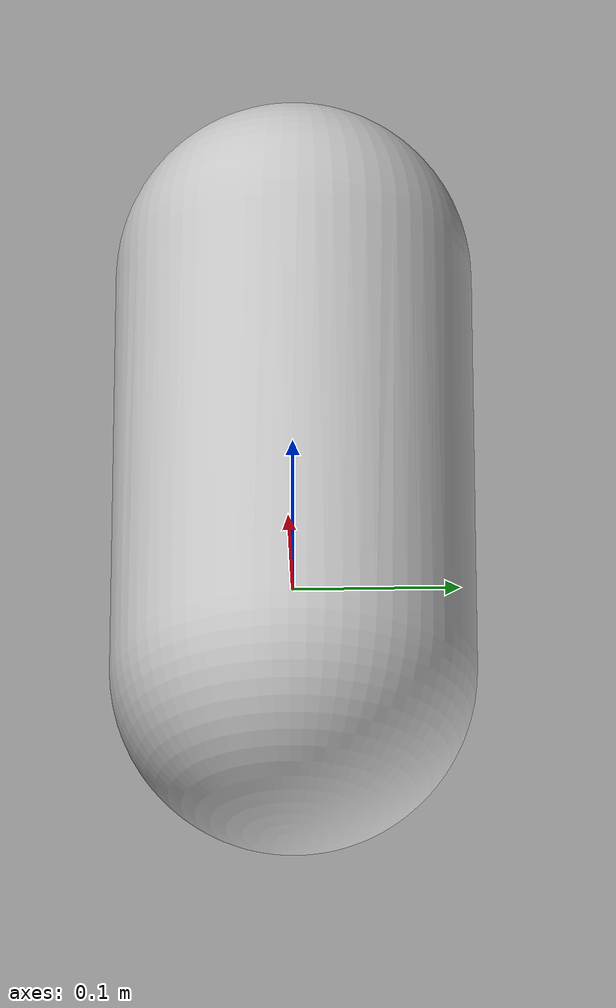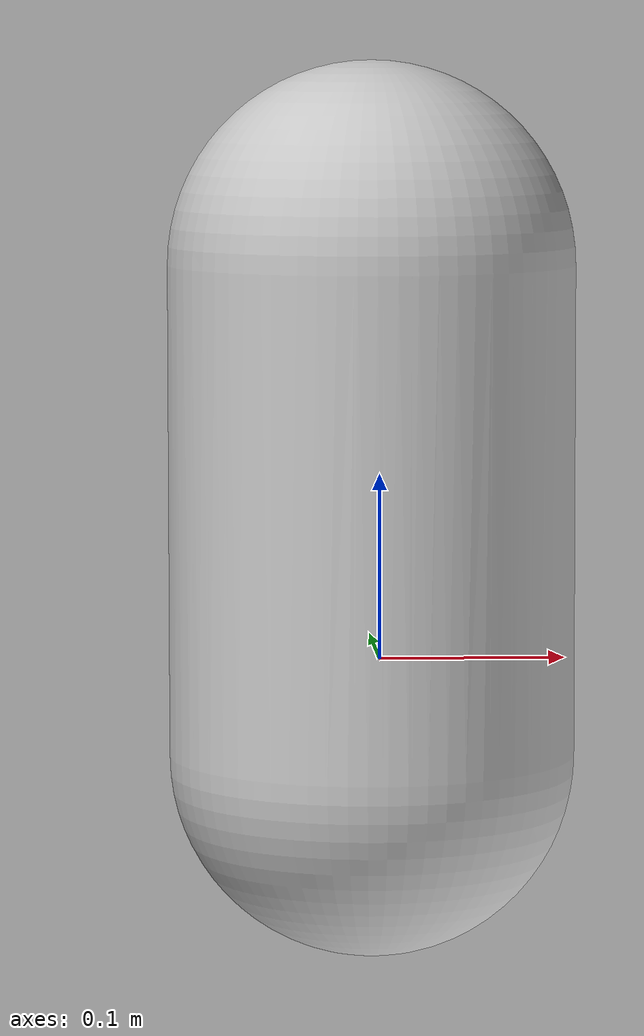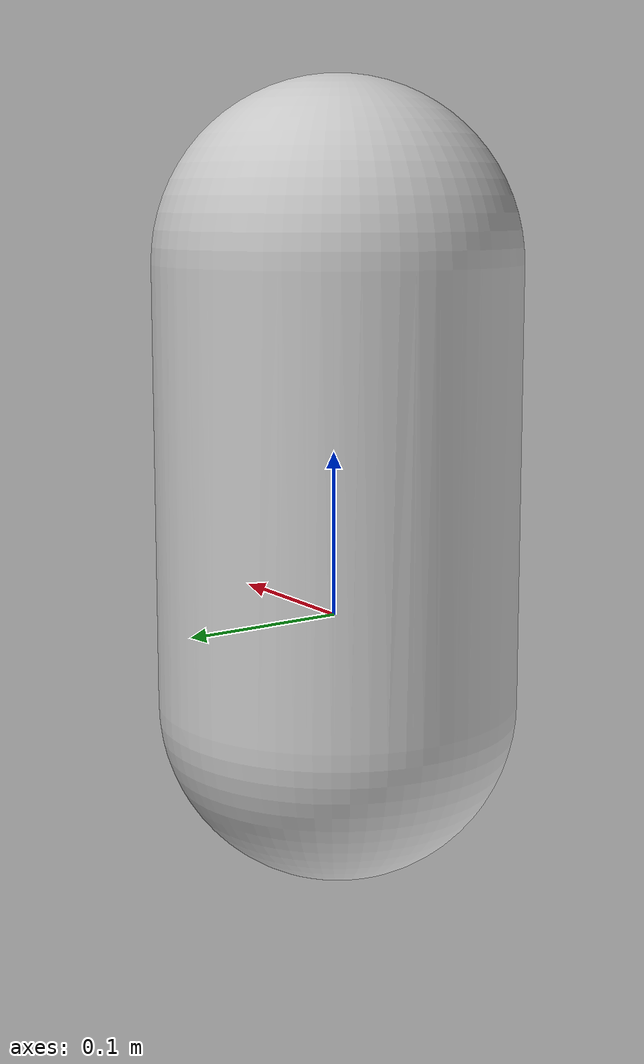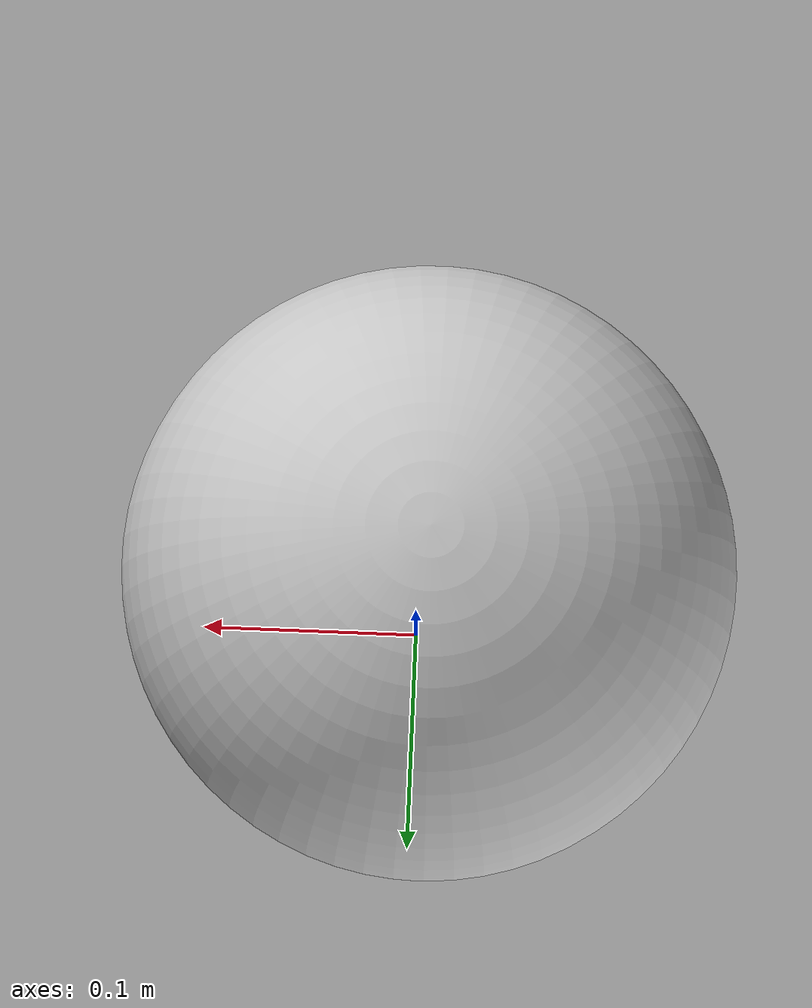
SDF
<?xml version="1.0"?>
<sdf version="1.5">
  <model name="white_marker_line">
    <static>true</static>
    <pose>0 0 -0.16087 0 0 0</pose>
    <link name="base_link">
      <visual name="visual">
        <geometry>
           <mesh>
            <uri>file://markers/white_marker_line.dae</uri>
          </mesh>
        </geometry>
      </visual>
      <collision name="collision">
        <geometry>
           <mesh>
            <uri>file://markers/white_marker_line.dae</uri>
          </mesh>
        </geometry>
      </collision>
    </link>
  </model>
</sdf>
